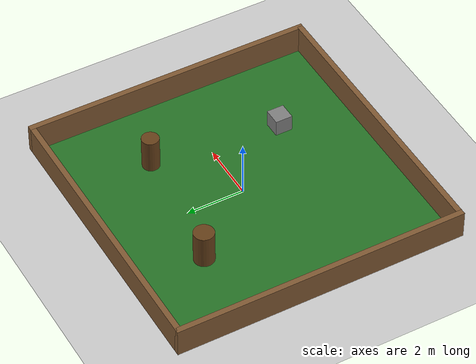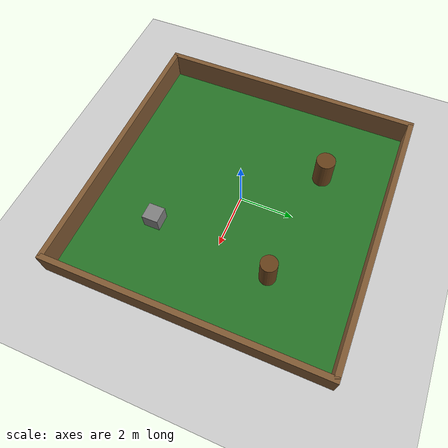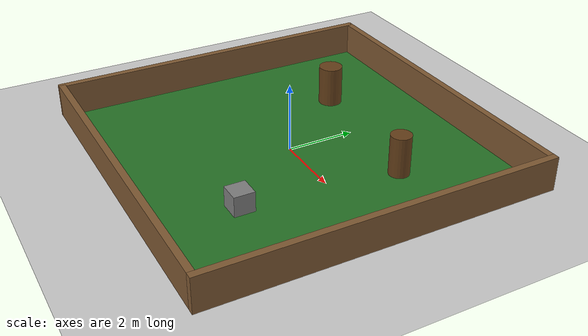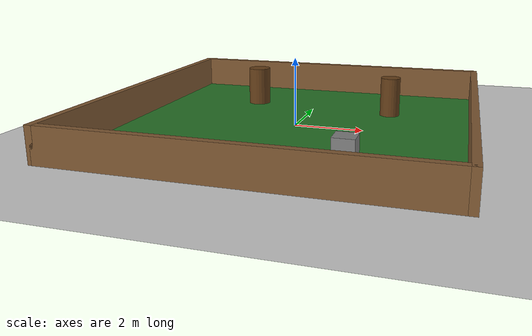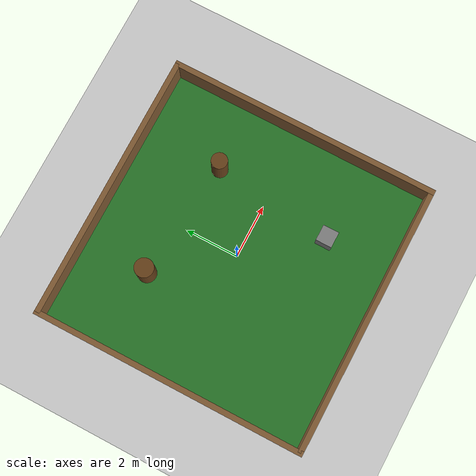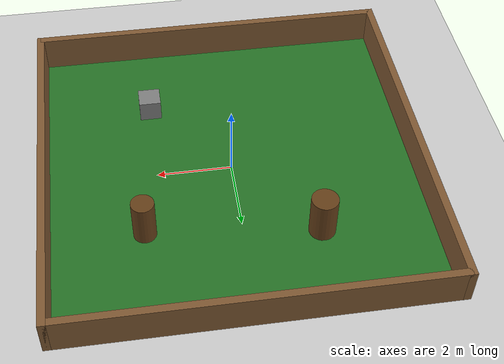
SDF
<?xml version="1.0" ?>
<sdf version="1.6">
  <world name="lawn_world">
    <!-- نور خورشید -->
    <include>
      <uri>model://sun</uri>
    </include>

    <!-- صفحه زمین -->
    <include>
      <uri>model://ground_plane</uri>
    </include>

    <!-- صفحه چمنزار (۱۰ در ۱۰ متر) -->
    <model name="grass_patch">
      <static>true</static>
      <link name="link">
        <visual name="visual">
          <pose>0 0 0.005 0 0 0</pose>
          <geometry><box><size>10 10 0.01</size></box></geometry>
          <material>
            <ambient>0.15 0.45 0.15 1</ambient>
            <diffuse>0.15 0.45 0.15 1</diffuse>
          </material>
        </visual>
      </link>
    </model>

    <!-- دیوارهای اطراف حیاط (مرز چمنزار برای تشخیص با LiDAR) -->
    <model name="garden_walls">
      <static>true</static>
      <link name="north_wall">
        <pose>5 0 0.5 0 0 0</pose>
        <collision name="collision"><geometry><box><size>0.2 10.2 1.0</size></box></geometry></collision>
        <visual name="visual"><geometry><box><size>0.2 10.2 1.0</size></box></geometry>
          <material><ambient>0.5 0.35 0.2 1</ambient><diffuse>0.5 0.35 0.2 1</diffuse></material>
        </visual>
      </link>
      <link name="south_wall">
        <pose>-5 0 0.5 0 0 0</pose>
        <collision name="collision"><geometry><box><size>0.2 10.2 1.0</size></box></geometry></collision>
        <visual name="visual"><geometry><box><size>0.2 10.2 1.0</size></box></geometry>
          <material><ambient>0.5 0.35 0.2 1</ambient><diffuse>0.5 0.35 0.2 1</diffuse></material>
        </visual>
      </link>
      <link name="east_wall">
        <pose>0 -5 0.5 0 0 0</pose>
        <collision name="collision"><geometry><box><size>10.0 0.2 1.0</size></box></geometry></collision>
        <visual name="visual"><geometry><box><size>10.0 0.2 1.0</size></box></geometry>
          <material><ambient>0.5 0.35 0.2 1</ambient><diffuse>0.5 0.35 0.2 1</diffuse></material>
        </visual>
      </link>
      <link name="west_wall">
        <pose>0 5 0.5 0 0 0</pose>
        <collision name="collision"><geometry><box><size>10.0 0.2 1.0</size></box></geometry></collision>
        <visual name="visual"><geometry><box><size>10.0 0.2 1.0</size></box></geometry>
          <material><ambient>0.5 0.35 0.2 1</ambient><diffuse>0.5 0.35 0.2 1</diffuse></material>
        </visual>
      </link>
    </model>

    <!-- موانع داخل حیاط (تنه درختان / موانع ثابت) -->
    <model name="tree_obstacle_1">
      <static>true</static>
      <pose>2.5 2.0 0.6 0 0 0</pose>
      <link name="link">
        <collision name="collision"><geometry><cylinder><radius>0.3</radius><length>1.2</length></cylinder></geometry></collision>
        <visual name="visual"><geometry><cylinder><radius>0.3</radius><length>1.2</length></cylinder></geometry>
          <material><ambient>0.4 0.25 0.1 1</ambient><diffuse>0.4 0.25 0.1 1</diffuse></material>
        </visual>
      </link>
    </model>

    <model name="tree_obstacle_2">
      <static>true</static>
      <pose>-2.0 2.5 0.6 0 0 0</pose>
      <link name="link">
        <collision name="collision"><geometry><cylinder><radius>0.35</radius><length>1.2</length></cylinder></geometry></collision>
        <visual name="visual"><geometry><cylinder><radius>0.35</radius><length>1.2</length></cylinder></geometry>
          <material><ambient>0.4 0.25 0.1 1</ambient><diffuse>0.4 0.25 0.1 1</diffuse></material>
        </visual>
      </link>
    </model>

    <model name="rock_obstacle">
      <static>true</static>
      <pose>2.0 -2.5 0.3 0 0 0</pose>
      <link name="link">
        <collision name="collision"><geometry><box><size>0.6 0.6 0.6</size></box></geometry></collision>
        <visual name="visual"><geometry><box><size>0.6 0.6 0.6</size></box></geometry>
          <material><ambient>0.5 0.5 0.5 1</ambient><diffuse>0.5 0.5 0.5 1</diffuse></material>
        </visual>
      </link>
    </model>

  </world>
</sdf>
